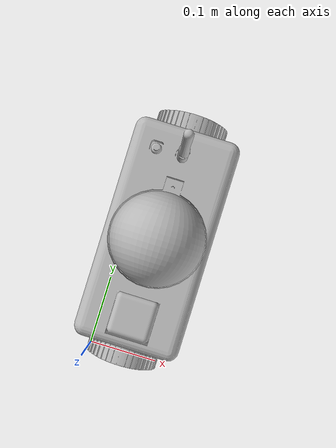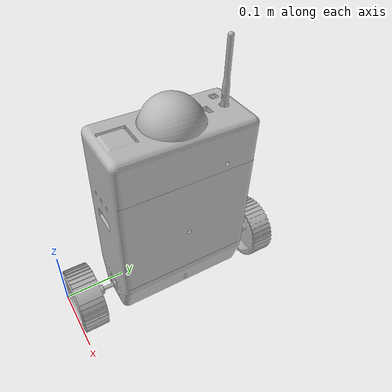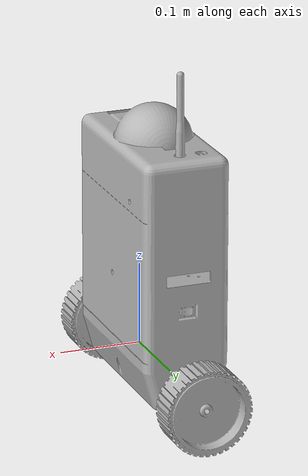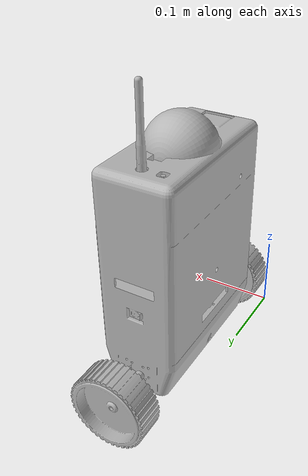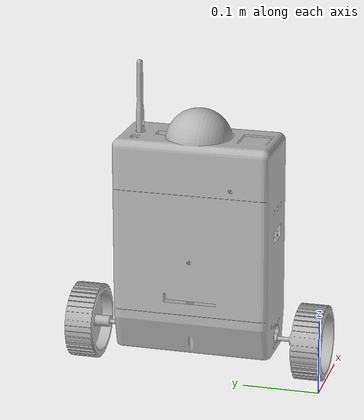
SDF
<?xml version='1.0'?>
<sdf version='1.6'>
  <model name='Balance Bot'>
    <static>false</static>
    <link name='body'>
      <pose frame=''>0 0 0 0 -0 0</pose>
      <inertial>
        <pose frame=''>0.049784 0.17627 0.17521 0 -0 0</pose>
        <mass>1.3633</mass>
        <inertia>
          <ixx>0.018248</ixx>
          <ixy>-1.3083e-05</ixy>
          <ixz>-2.9568e-05</ixz>
          <iyy>0.01363</iyy>
          <iyz>9.5577e-06</iyz>
          <izz>0.0072061</izz>
        </inertia>
      </inertial>
      <collision name='body_collision'>
        <pose frame=''>0 0 0 0 -0 0</pose>
        <geometry>
          <mesh>
            <scale>1 1 1</scale>
            <uri>model://Balance Bot/meshes/body.STL</uri>
          </mesh>
        </geometry>
      </collision>
      <visual name='body_visual'>
        <pose frame=''>0 0 0 0 -0 0</pose>
        <geometry>
          <mesh>
            <scale>1 1 1</scale>
            <uri>model://Balance Bot/meshes/body.STL</uri>
          </mesh>
        </geometry>
      </visual>
      <sensor name="imu_sensor" type="imu">
        <pose>0 0 0 3.141593 0 0</pose>
        <always_on>1</always_on>
        <update_rate>1000.0</update_rate>
      </sensor>
    </link>
    <link name='left wheel'>
      <pose frame=''>0.049859 0.2976 0.05 1.5708 -0.59094 0</pose>
      <inertial>
        <pose frame=''>0 2e-06 -0.029584 0 -0 0</pose>
        <mass>0.13</mass>
        <inertia>
          <ixx>0.00011146</ixx>
          <ixy>1.5779e-13</ixy>
          <ixz>-3.5407e-13</ixz>
          <iyy>0.00011146</iyy>
          <iyz>-6.474e-09</iyz>
          <izz>0.00019997</izz>
        </inertia>
      </inertial>
      <collision name='left wheel_collision'>
        <pose frame=''>0 0 0 0 -0 0</pose>
        <geometry>
          <mesh>
            <scale>1 1 1</scale>
            <uri>model://Balance Bot/meshes/left wheel.STL</uri>
          </mesh>
        </geometry>
      </collision>
      <visual name='left wheel_visual'>
        <pose frame=''>0 0 0 0 -0 0</pose>
        <geometry>
          <mesh>
            <scale>1 1 1</scale>
            <uri>model://Balance Bot/meshes/left wheel.STL</uri>
          </mesh>
        </geometry>
      </visual>
    </link>
    <joint name='left wheel axis' type='revolute'>
      <child>left wheel</child>
      <parent>body</parent>
      <axis>
        <xyz>-2e-06 1 3e-06</xyz>

        <use_parent_model_frame>1</use_parent_model_frame>
      </axis>
    </joint>
    <link name='right wheel'>
      <pose frame=''>0.049859 0 0.05 -1.5708 1.231 -0</pose>
      <inertial>
        <pose frame=''>0 2e-06 0.020416 0 -0 0</pose>
        <mass>0.13</mass>
        <inertia>
          <ixx>0.00011146</ixx>
          <ixy>1.5779e-13</ixy>
          <ixz>-3.5407e-13</ixz>
          <iyy>0.00011146</iyy>
          <iyz>-6.474e-09</iyz>
          <izz>0.00019997</izz>
        </inertia>
      </inertial>
      <collision name='right wheel_collision'>
        <pose frame=''>0 0 0 0 -0 0</pose>
        <geometry>
          <mesh>
            <scale>1 1 1</scale>
            <uri>model://Balance Bot/meshes/right wheel.STL</uri>
          </mesh>
        </geometry>
      </collision>
      <visual name='right wheel_visual'>
        <pose frame=''>0 0 0 0 -0 0</pose>
        <geometry>
          <mesh>
            <scale>1 1 1</scale>
            <uri>model://Balance Bot/meshes/right wheel.STL</uri>
          </mesh>
        </geometry>
      </visual>
    </link>
    <joint name='right wheel axis' type='revolute'>
      <child>right wheel</child>
      <parent>body</parent>
      <axis>
        <xyz>-3e-06 1 -1e-06</xyz>

        <use_parent_model_frame>1</use_parent_model_frame>
      </axis>
    </joint>
    <plugin name='BalanceBotplugin' filename='libBalanceBotplugin.so'/>
  </model>
</sdf>
